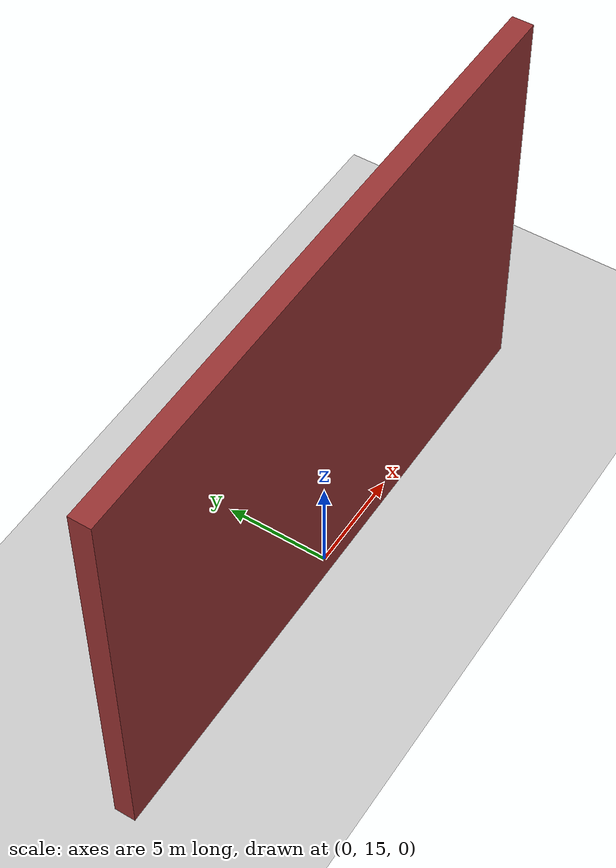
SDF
<?xml version="1.0" encoding="UTF-8"?>
<sdf version="1.9">
  <world name="delivery">
    <physics type="ode">
      <max_step_size>0.004</max_step_size>
      <real_time_factor>1.0</real_time_factor>
      <real_time_update_rate>250</real_time_update_rate>
    </physics>
    <gravity>0 0 -9.8</gravity>
    <magnetic_field>6e-06 2.3e-05 -4.2e-05</magnetic_field>
    <atmosphere type="adiabatic"/>
    <scene>
      <grid>false</grid>
      <ambient>0.4 0.4 0.4 1</ambient>
      <background>0.7 0.7 0.7 1</background>
      <shadows>true</shadows>
    </scene>

    <model name="ground_plane">
      <static>true</static>
      <link name="link">
        <collision name="collision">
          <geometry>
            <plane>
              <normal>0 0 1</normal>
              <size>1 1</size>
            </plane>
          </geometry>
          <surface>
            <friction>
              <ode/>
            </friction>
            <bounce/>
            <contact/>
          </surface>
        </collision>
        <visual name="visual">
          <geometry>
            <plane>
              <normal>0 0 1</normal>
              <size>500 500</size>
            </plane>
          </geometry>
          <material>
            <ambient>0.8 0.8 0.8 1</ambient>
            <diffuse>0.8 0.8 0.8 1</diffuse>
            <specular>0.8 0.8 0.8 1</specular>
          </material>
        </visual>
        <pose>0 0 0 0 -0 0</pose>
        <inertial>
          <pose>0 0 0 0 -0 0</pose>
          <mass>1</mass>
          <inertia>
            <ixx>1</ixx><ixy>0</ixy><ixz>0</ixz>
            <iyy>1</iyy><iyz>0</iyz><izz>1</izz>
          </inertia>
        </inertial>
        <enable_wind>false</enable_wind>
      </link>
      <pose>0 0 0 0 -0 0</pose>
      <self_collide>false</self_collide>
    </model>

    <light name="sunUTC" type="directional">
      <pose>0 0 500 0 -0 0</pose>
      <cast_shadows>true</cast_shadows>
      <intensity>1</intensity>
      <direction>0.001 0.625 -0.78</direction>
      <diffuse>0.904 0.904 0.904 1</diffuse>
      <specular>0.271 0.271 0.271 1</specular>
      <attenuation>
        <range>2000</range>
        <linear>0</linear>
        <constant>1</constant>
        <quadratic>0</quadratic>
      </attenuation>
      <spot>
        <inner_angle>0</inner_angle>
        <outer_angle>0</outer_angle>
        <falloff>0</falloff>
      </spot>
    </light>

    <!-- Obstacle fixture for the P5 detour acceptance test. Wide and tall
         enough that reactive dodging alone cannot resolve it, which is what
         drives the 12 s ESCALATE -> plan_detour path. -->
    <model name="great_wall">
      <static>true</static>
      <pose>0 15 10 0 0 0</pose>
      <link name="link">
        <collision name="collision">
          <geometry><box><size>30 1 20</size></box></geometry>
        </collision>
        <visual name="visual">
          <geometry><box><size>30 1 20</size></box></geometry>
          <material>
            <ambient>0.6 0.2 0.2 1</ambient>
            <diffuse>0.6 0.2 0.2 1</diffuse>
          </material>
        </visual>
      </link>
    </model>

    <!-- Must match the Leaflet map centre in
         fleet_dispatch/templates/index.html. -->
    <spherical_coordinates>
      <surface_model>EARTH_WGS84</surface_model>
      <world_frame_orientation>ENU</world_frame_orientation>
      <latitude_deg>30.0314722223</latitude_deg>
      <longitude_deg>72.3140833333</longitude_deg>
      <elevation>0</elevation>
    </spherical_coordinates>
  </world>
</sdf>
